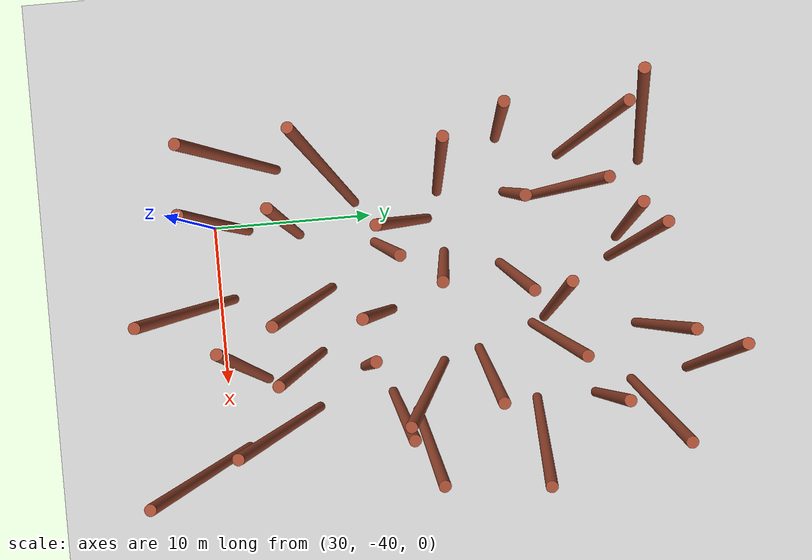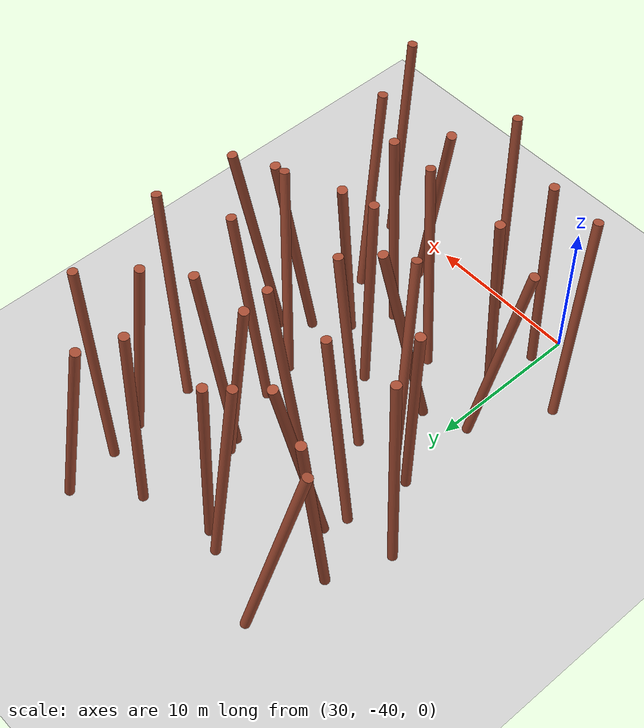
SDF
<sdf version="1.5">
 <world name="default">
  <include><uri>model://sun</uri></include>
  <include><uri>model://ground_plane</uri></include>
  <include><uri>model://asphalt_plane</uri><pose>0 0 -0.000001 0 0 0</pose></include>
  <model name="unit_cylinder_100">
   <pose>26.93196 -36.65088 7.70000 0.12512 0.04221 0.00000</pose>
   <gravity>0 0 0</gravity>
   <link name="link">
    <inertial>
     <mass>100</mass>
     <inertia><ixx>20</ixx><ixy>0</ixy><ixz>0</ixz><iyy>20</iyy><iyz>0</iyz><izz>20</izz></inertia>
    </inertial>
    <collision name="collision">
     <geometry><cylinder><radius>0.300</radius><length>15.000</length></cylinder></geometry>
    </collision>
    <visual name="visual">
     <geometry><cylinder><radius>0.300</radius><length>15.000</length></cylinder></geometry>
     <material>
      <script><name>Gazebo/Bricks</name><uri>file://media/materials/scripts/gazebo.material</uri></script>
     </material>
    </visual>
   </link>
   <static>1</static>
  </model>
  <model name="unit_cylinder_102">
   <pose>28.02639 -31.56326 7.70000 0.09041 -0.14822 0.00000</pose>
   <gravity>0 0 0</gravity>
   <link name="link">
    <inertial>
     <mass>100</mass>
     <inertia><ixx>20</ixx><ixy>0</ixy><ixz>0</ixz><iyy>20</iyy><iyz>0</iyz><izz>20</izz></inertia>
    </inertial>
    <collision name="collision">
     <geometry><cylinder><radius>0.300</radius><length>15.000</length></cylinder></geometry>
    </collision>
    <visual name="visual">
     <geometry><cylinder><radius>0.300</radius><length>15.000</length></cylinder></geometry>
     <material>
      <script><name>Gazebo/Bricks</name><uri>file://media/materials/scripts/gazebo.material</uri></script>
     </material>
    </visual>
    <kinematic>1</kinematic>
   </link>
   <static>0</static>
   <plugin name="dynamic_obstacle_motion_102" filename="libobstaclePathPlugin.so">
    <motion_type>proximity_linear</motion_type>
    <direction>-0.324916563 0.945742685 0.000000000</direction>
    <velocity>0.389677918</velocity>
    <activation_distance>20.000000000</activation_distance>
    <activation_model>iris</activation_model>
    <orientation>false</orientation>
    <marker_enabled>true</marker_enabled>
    <marker_id>102</marker_id>
    <marker_radius>0.300000000</marker_radius>
    <marker_height>15.000000000</marker_height>
    <marker_rate>20.0</marker_rate>
    <marker_topic>/uav_simulator/dynamic_obstacles</marker_topic>
    <marker_frame>map</marker_frame>
   </plugin>
  </model>
  <model name="unit_cylinder_103">
   <pose>28.44000 -25.28094 7.70000 -0.04207 -0.06044 0.00000</pose>
   <gravity>0 0 0</gravity>
   <link name="link">
    <inertial>
     <mass>100</mass>
     <inertia><ixx>20</ixx><ixy>0</ixy><ixz>0</ixz><iyy>20</iyy><iyz>0</iyz><izz>20</izz></inertia>
    </inertial>
    <collision name="collision">
     <geometry><cylinder><radius>0.300</radius><length>15.000</length></cylinder></geometry>
    </collision>
    <visual name="visual">
     <geometry><cylinder><radius>0.300</radius><length>15.000</length></cylinder></geometry>
     <material>
      <script><name>Gazebo/Bricks</name><uri>file://media/materials/scripts/gazebo.material</uri></script>
     </material>
    </visual>
    <kinematic>1</kinematic>
   </link>
   <static>0</static>
   <plugin name="dynamic_obstacle_motion_103" filename="libobstaclePathPlugin.so">
    <motion_type>proximity_linear</motion_type>
    <direction>-0.965056633 0.262041400 0.000000000</direction>
    <velocity>1.583879228</velocity>
    <activation_distance>20.000000000</activation_distance>
    <activation_model>iris</activation_model>
    <orientation>false</orientation>
    <marker_enabled>true</marker_enabled>
    <marker_id>103</marker_id>
    <marker_radius>0.300000000</marker_radius>
    <marker_height>15.000000000</marker_height>
    <marker_rate>20.0</marker_rate>
    <marker_topic>/uav_simulator/dynamic_obstacles</marker_topic>
    <marker_frame>map</marker_frame>
   </plugin>
  </model>
  <model name="unit_cylinder_104">
   <pose>26.20484 -21.76531 7.70000 0.02459 0.05343 0.00000</pose>
   <gravity>0 0 0</gravity>
   <link name="link">
    <inertial>
     <mass>100</mass>
     <inertia><ixx>20</ixx><ixy>0</ixy><ixz>0</ixz><iyy>20</iyy><iyz>0</iyz><izz>20</izz></inertia>
    </inertial>
    <collision name="collision">
     <geometry><cylinder><radius>0.300</radius><length>15.000</length></cylinder></geometry>
    </collision>
    <visual name="visual">
     <geometry><cylinder><radius>0.300</radius><length>15.000</length></cylinder></geometry>
     <material>
      <script><name>Gazebo/Bricks</name><uri>file://media/materials/scripts/gazebo.material</uri></script>
     </material>
    </visual>
    <kinematic>1</kinematic>
   </link>
   <static>0</static>
   <plugin name="dynamic_obstacle_motion_104" filename="libobstaclePathPlugin.so">
    <motion_type>proximity_linear</motion_type>
    <direction>0.863160348 0.504929909 0.000000000</direction>
    <velocity>0.607405265</velocity>
    <activation_distance>20.000000000</activation_distance>
    <activation_model>iris</activation_model>
    <orientation>false</orientation>
    <marker_enabled>true</marker_enabled>
    <marker_id>104</marker_id>
    <marker_radius>0.300000000</marker_radius>
    <marker_height>15.000000000</marker_height>
    <marker_rate>20.0</marker_rate>
    <marker_topic>/uav_simulator/dynamic_obstacles</marker_topic>
    <marker_frame>map</marker_frame>
   </plugin>
  </model>
  <model name="unit_cylinder_105">
   <pose>27.13238 -16.89175 7.70000 -0.11122 -0.01059 0.00000</pose>
   <gravity>0 0 0</gravity>
   <link name="link">
    <inertial>
     <mass>100</mass>
     <inertia><ixx>20</ixx><ixy>0</ixy><ixz>0</ixz><iyy>20</iyy><iyz>0</iyz><izz>20</izz></inertia>
    </inertial>
    <collision name="collision">
     <geometry><cylinder><radius>0.300</radius><length>15.000</length></cylinder></geometry>
    </collision>
    <visual name="visual">
     <geometry><cylinder><radius>0.300</radius><length>15.000</length></cylinder></geometry>
     <material>
      <script><name>Gazebo/Bricks</name><uri>file://media/materials/scripts/gazebo.material</uri></script>
     </material>
    </visual>
    <kinematic>1</kinematic>
   </link>
   <static>0</static>
   <plugin name="dynamic_obstacle_motion_105" filename="libobstaclePathPlugin.so">
    <motion_type>proximity_linear</motion_type>
    <direction>0.502331174 0.864675310 0.000000000</direction>
    <velocity>0.558505945</velocity>
    <activation_distance>20.000000000</activation_distance>
    <activation_model>iris</activation_model>
    <orientation>false</orientation>
    <marker_enabled>true</marker_enabled>
    <marker_id>105</marker_id>
    <marker_radius>0.300000000</marker_radius>
    <marker_height>15.000000000</marker_height>
    <marker_rate>20.0</marker_rate>
    <marker_topic>/uav_simulator/dynamic_obstacles</marker_topic>
    <marker_frame>map</marker_frame>
   </plugin>
  </model>
  <model name="unit_cylinder_106">
   <pose>26.80536 -13.89065 7.70000 0.17180 -0.16900 0.00000</pose>
   <gravity>0 0 0</gravity>
   <link name="link">
    <inertial>
     <mass>100</mass>
     <inertia><ixx>20</ixx><ixy>0</ixy><ixz>0</ixz><iyy>20</iyy><iyz>0</iyz><izz>20</izz></inertia>
    </inertial>
    <collision name="collision">
     <geometry><cylinder><radius>0.300</radius><length>15.000</length></cylinder></geometry>
    </collision>
    <visual name="visual">
     <geometry><cylinder><radius>0.300</radius><length>15.000</length></cylinder></geometry>
     <material>
      <script><name>Gazebo/Bricks</name><uri>file://media/materials/scripts/gazebo.material</uri></script>
     </material>
    </visual>
    <kinematic>1</kinematic>
   </link>
   <static>0</static>
   <plugin name="dynamic_obstacle_motion_106" filename="libobstaclePathPlugin.so">
    <motion_type>proximity_linear</motion_type>
    <direction>-0.667360134 0.744735155 0.000000000</direction>
    <velocity>1.034438366</velocity>
    <activation_distance>20.000000000</activation_distance>
    <activation_model>iris</activation_model>
    <orientation>false</orientation>
    <marker_enabled>true</marker_enabled>
    <marker_id>106</marker_id>
    <marker_radius>0.300000000</marker_radius>
    <marker_height>15.000000000</marker_height>
    <marker_rate>20.0</marker_rate>
    <marker_topic>/uav_simulator/dynamic_obstacles</marker_topic>
    <marker_frame>map</marker_frame>
   </plugin>
  </model>
  <model name="unit_cylinder_120">
   <pose>30.47065 -37.78100 7.70000 -0.00720 0.01713 0.00000</pose>
   <gravity>0 0 0</gravity>
   <link name="link">
    <inertial>
     <mass>100</mass>
     <inertia><ixx>20</ixx><ixy>0</ixy><ixz>0</ixz><iyy>20</iyy><iyz>0</iyz><izz>20</izz></inertia>
    </inertial>
    <collision name="collision">
     <geometry><cylinder><radius>0.300</radius><length>15.000</length></cylinder></geometry>
    </collision>
    <visual name="visual">
     <geometry><cylinder><radius>0.300</radius><length>15.000</length></cylinder></geometry>
     <material>
      <script><name>Gazebo/Bricks</name><uri>file://media/materials/scripts/gazebo.material</uri></script>
     </material>
    </visual>
   </link>
   <static>1</static>
  </model>
  <model name="unit_cylinder_121">
   <pose>30.76302 -34.05270 7.70000 -0.07211 -0.01516 0.00000</pose>
   <gravity>0 0 0</gravity>
   <link name="link">
    <inertial>
     <mass>100</mass>
     <inertia><ixx>20</ixx><ixy>0</ixy><ixz>0</ixz><iyy>20</iyy><iyz>0</iyz><izz>20</izz></inertia>
    </inertial>
    <collision name="collision">
     <geometry><cylinder><radius>0.300</radius><length>15.000</length></cylinder></geometry>
    </collision>
    <visual name="visual">
     <geometry><cylinder><radius>0.300</radius><length>15.000</length></cylinder></geometry>
     <material>
      <script><name>Gazebo/Bricks</name><uri>file://media/materials/scripts/gazebo.material</uri></script>
     </material>
    </visual>
   </link>
   <static>1</static>
  </model>
  <model name="unit_cylinder_122">
   <pose>32.58461 -28.64400 7.70000 -0.15858 0.10804 0.00000</pose>
   <gravity>0 0 0</gravity>
   <link name="link">
    <inertial>
     <mass>100</mass>
     <inertia><ixx>20</ixx><ixy>0</ixy><ixz>0</ixz><iyy>20</iyy><iyz>0</iyz><izz>20</izz></inertia>
    </inertial>
    <collision name="collision">
     <geometry><cylinder><radius>0.300</radius><length>15.000</length></cylinder></geometry>
    </collision>
    <visual name="visual">
     <geometry><cylinder><radius>0.300</radius><length>15.000</length></cylinder></geometry>
     <material>
      <script><name>Gazebo/Bricks</name><uri>file://media/materials/scripts/gazebo.material</uri></script>
     </material>
    </visual>
   </link>
   <static>1</static>
  </model>
  <model name="unit_cylinder_123">
   <pose>31.21159 -27.40756 7.70000 0.14224 0.08819 0.00000</pose>
   <gravity>0 0 0</gravity>
   <link name="link">
    <inertial>
     <mass>100</mass>
     <inertia><ixx>20</ixx><ixy>0</ixy><ixz>0</ixz><iyy>20</iyy><iyz>0</iyz><izz>20</izz></inertia>
    </inertial>
    <collision name="collision">
     <geometry><cylinder><radius>0.300</radius><length>15.000</length></cylinder></geometry>
    </collision>
    <visual name="visual">
     <geometry><cylinder><radius>0.300</radius><length>15.000</length></cylinder></geometry>
     <material>
      <script><name>Gazebo/Bricks</name><uri>file://media/materials/scripts/gazebo.material</uri></script>
     </material>
    </visual>
    <kinematic>1</kinematic>
   </link>
   <static>0</static>
   <plugin name="dynamic_obstacle_motion_123" filename="libobstaclePathPlugin.so">
    <motion_type>proximity_linear</motion_type>
    <direction>-0.192374243 0.981321635 0.000000000</direction>
    <velocity>0.296649496</velocity>
    <activation_distance>20.000000000</activation_distance>
    <activation_model>iris</activation_model>
    <orientation>false</orientation>
    <marker_enabled>true</marker_enabled>
    <marker_id>123</marker_id>
    <marker_radius>0.300000000</marker_radius>
    <marker_height>15.000000000</marker_height>
    <marker_rate>20.0</marker_rate>
    <marker_topic>/uav_simulator/dynamic_obstacles</marker_topic>
    <marker_frame>map</marker_frame>
   </plugin>
  </model>
  <model name="unit_cylinder_124">
   <pose>30.18014 -21.33307 7.70000 -0.00153 0.12000 0.00000</pose>
   <gravity>0 0 0</gravity>
   <link name="link">
    <inertial>
     <mass>100</mass>
     <inertia><ixx>20</ixx><ixy>0</ixy><ixz>0</ixz><iyy>20</iyy><iyz>0</iyz><izz>20</izz></inertia>
    </inertial>
    <collision name="collision">
     <geometry><cylinder><radius>0.300</radius><length>15.000</length></cylinder></geometry>
    </collision>
    <visual name="visual">
     <geometry><cylinder><radius>0.300</radius><length>15.000</length></cylinder></geometry>
     <material>
      <script><name>Gazebo/Bricks</name><uri>file://media/materials/scripts/gazebo.material</uri></script>
     </material>
    </visual>
    <kinematic>1</kinematic>
   </link>
   <static>0</static>
   <plugin name="dynamic_obstacle_motion_124" filename="libobstaclePathPlugin.so">
    <motion_type>proximity_linear</motion_type>
    <direction>-0.999165216 -0.040851815 0.000000000</direction>
    <velocity>1.587818739</velocity>
    <activation_distance>20.000000000</activation_distance>
    <activation_model>iris</activation_model>
    <orientation>false</orientation>
    <marker_enabled>true</marker_enabled>
    <marker_id>124</marker_id>
    <marker_radius>0.300000000</marker_radius>
    <marker_height>15.000000000</marker_height>
    <marker_rate>20.0</marker_rate>
    <marker_topic>/uav_simulator/dynamic_obstacles</marker_topic>
    <marker_frame>map</marker_frame>
   </plugin>
  </model>
  <model name="unit_cylinder_125">
   <pose>30.12170 -18.58486 7.70000 -0.17320 0.05793 0.00000</pose>
   <gravity>0 0 0</gravity>
   <link name="link">
    <inertial>
     <mass>100</mass>
     <inertia><ixx>20</ixx><ixy>0</ixy><ixz>0</ixz><iyy>20</iyy><iyz>0</iyz><izz>20</izz></inertia>
    </inertial>
    <collision name="collision">
     <geometry><cylinder><radius>0.300</radius><length>15.000</length></cylinder></geometry>
    </collision>
    <visual name="visual">
     <geometry><cylinder><radius>0.300</radius><length>15.000</length></cylinder></geometry>
     <material>
      <script><name>Gazebo/Bricks</name><uri>file://media/materials/scripts/gazebo.material</uri></script>
     </material>
    </visual>
    <kinematic>1</kinematic>
   </link>
   <static>0</static>
   <plugin name="dynamic_obstacle_motion_125" filename="libobstaclePathPlugin.so">
    <motion_type>proximity_linear</motion_type>
    <direction>0.866249400 -0.499611826 0.000000000</direction>
    <velocity>0.473830474</velocity>
    <activation_distance>20.000000000</activation_distance>
    <activation_model>iris</activation_model>
    <orientation>false</orientation>
    <marker_enabled>true</marker_enabled>
    <marker_id>125</marker_id>
    <marker_radius>0.300000000</marker_radius>
    <marker_height>15.000000000</marker_height>
    <marker_rate>20.0</marker_rate>
    <marker_topic>/uav_simulator/dynamic_obstacles</marker_topic>
    <marker_frame>map</marker_frame>
   </plugin>
  </model>
  <model name="unit_cylinder_126">
   <pose>32.31960 -15.10361 7.70000 0.09334 -0.06051 0.00000</pose>
   <gravity>0 0 0</gravity>
   <link name="link">
    <inertial>
     <mass>100</mass>
     <inertia><ixx>20</ixx><ixy>0</ixy><ixz>0</ixz><iyy>20</iyy><iyz>0</iyz><izz>20</izz></inertia>
    </inertial>
    <collision name="collision">
     <geometry><cylinder><radius>0.300</radius><length>15.000</length></cylinder></geometry>
    </collision>
    <visual name="visual">
     <geometry><cylinder><radius>0.300</radius><length>15.000</length></cylinder></geometry>
     <material>
      <script><name>Gazebo/Bricks</name><uri>file://media/materials/scripts/gazebo.material</uri></script>
     </material>
    </visual>
    <kinematic>1</kinematic>
   </link>
   <static>0</static>
   <plugin name="dynamic_obstacle_motion_126" filename="libobstaclePathPlugin.so">
    <motion_type>proximity_linear</motion_type>
    <direction>0.596321644 0.802745599 0.000000000</direction>
    <velocity>0.120959175</velocity>
    <activation_distance>20.000000000</activation_distance>
    <activation_model>iris</activation_model>
    <orientation>false</orientation>
    <marker_enabled>true</marker_enabled>
    <marker_id>126</marker_id>
    <marker_radius>0.300000000</marker_radius>
    <marker_height>15.000000000</marker_height>
    <marker_rate>20.0</marker_rate>
    <marker_topic>/uav_simulator/dynamic_obstacles</marker_topic>
    <marker_frame>map</marker_frame>
   </plugin>
  </model>
  <model name="unit_cylinder_140">
   <pose>35.17888 -39.65870 7.70000 0.07435 0.07308 0.00000</pose>
   <gravity>0 0 0</gravity>
   <link name="link">
    <inertial>
     <mass>100</mass>
     <inertia><ixx>20</ixx><ixy>0</ixy><ixz>0</ixz><iyy>20</iyy><iyz>0</iyz><izz>20</izz></inertia>
    </inertial>
    <collision name="collision">
     <geometry><cylinder><radius>0.300</radius><length>15.000</length></cylinder></geometry>
    </collision>
    <visual name="visual">
     <geometry><cylinder><radius>0.300</radius><length>15.000</length></cylinder></geometry>
     <material>
      <script><name>Gazebo/Bricks</name><uri>file://media/materials/scripts/gazebo.material</uri></script>
     </material>
    </visual>
    <kinematic>1</kinematic>
   </link>
   <static>0</static>
   <plugin name="dynamic_obstacle_motion_140" filename="libobstaclePathPlugin.so">
    <motion_type>proximity_linear</motion_type>
    <direction>0.994637295 0.103424613 0.000000000</direction>
    <velocity>1.117797172</velocity>
    <activation_distance>20.000000000</activation_distance>
    <activation_model>iris</activation_model>
    <orientation>false</orientation>
    <marker_enabled>true</marker_enabled>
    <marker_id>140</marker_id>
    <marker_radius>0.300000000</marker_radius>
    <marker_height>15.000000000</marker_height>
    <marker_rate>20.0</marker_rate>
    <marker_topic>/uav_simulator/dynamic_obstacles</marker_topic>
    <marker_frame>map</marker_frame>
   </plugin>
  </model>
  <model name="unit_cylinder_141">
   <pose>35.31934 -33.27582 7.70000 0.06363 0.11953 0.00000</pose>
   <gravity>0 0 0</gravity>
   <link name="link">
    <inertial>
     <mass>100</mass>
     <inertia><ixx>20</ixx><ixy>0</ixy><ixz>0</ixz><iyy>20</iyy><iyz>0</iyz><izz>20</izz></inertia>
    </inertial>
    <collision name="collision">
     <geometry><cylinder><radius>0.300</radius><length>15.000</length></cylinder></geometry>
    </collision>
    <visual name="visual">
     <geometry><cylinder><radius>0.300</radius><length>15.000</length></cylinder></geometry>
     <material>
      <script><name>Gazebo/Bricks</name><uri>file://media/materials/scripts/gazebo.material</uri></script>
     </material>
    </visual>
    <kinematic>1</kinematic>
   </link>
   <static>0</static>
   <plugin name="dynamic_obstacle_motion_141" filename="libobstaclePathPlugin.so">
    <motion_type>proximity_linear</motion_type>
    <direction>-0.594307068 -0.804238217 0.000000000</direction>
    <velocity>0.858811427</velocity>
    <activation_distance>20.000000000</activation_distance>
    <activation_model>iris</activation_model>
    <orientation>false</orientation>
    <marker_enabled>true</marker_enabled>
    <marker_id>141</marker_id>
    <marker_radius>0.300000000</marker_radius>
    <marker_height>15.000000000</marker_height>
    <marker_rate>20.0</marker_rate>
    <marker_topic>/uav_simulator/dynamic_obstacles</marker_topic>
    <marker_frame>map</marker_frame>
   </plugin>
  </model>
  <model name="unit_cylinder_142">
   <pose>36.18419 -29.26305 7.70000 0.02699 0.00560 0.00000</pose>
   <gravity>0 0 0</gravity>
   <link name="link">
    <inertial>
     <mass>100</mass>
     <inertia><ixx>20</ixx><ixy>0</ixy><ixz>0</ixz><iyy>20</iyy><iyz>0</iyz><izz>20</izz></inertia>
    </inertial>
    <collision name="collision">
     <geometry><cylinder><radius>0.300</radius><length>15.000</length></cylinder></geometry>
    </collision>
    <visual name="visual">
     <geometry><cylinder><radius>0.300</radius><length>15.000</length></cylinder></geometry>
     <material>
      <script><name>Gazebo/Bricks</name><uri>file://media/materials/scripts/gazebo.material</uri></script>
     </material>
    </visual>
    <kinematic>1</kinematic>
   </link>
   <static>0</static>
   <plugin name="dynamic_obstacle_motion_142" filename="libobstaclePathPlugin.so">
    <motion_type>proximity_linear</motion_type>
    <direction>-0.643269541 0.765639796 0.000000000</direction>
    <velocity>1.975636533</velocity>
    <activation_distance>20.000000000</activation_distance>
    <activation_model>iris</activation_model>
    <orientation>false</orientation>
    <marker_enabled>true</marker_enabled>
    <marker_id>142</marker_id>
    <marker_radius>0.300000000</marker_radius>
    <marker_height>15.000000000</marker_height>
    <marker_rate>20.0</marker_rate>
    <marker_topic>/uav_simulator/dynamic_obstacles</marker_topic>
    <marker_frame>map</marker_frame>
   </plugin>
  </model>
  <model name="unit_cylinder_143">
   <pose>33.79461 -25.50345 7.70000 0.00590 0.13578 0.00000</pose>
   <gravity>0 0 0</gravity>
   <link name="link">
    <inertial>
     <mass>100</mass>
     <inertia><ixx>20</ixx><ixy>0</ixy><ixz>0</ixz><iyy>20</iyy><iyz>0</iyz><izz>20</izz></inertia>
    </inertial>
    <collision name="collision">
     <geometry><cylinder><radius>0.300</radius><length>15.000</length></cylinder></geometry>
    </collision>
    <visual name="visual">
     <geometry><cylinder><radius>0.300</radius><length>15.000</length></cylinder></geometry>
     <material>
      <script><name>Gazebo/Bricks</name><uri>file://media/materials/scripts/gazebo.material</uri></script>
     </material>
    </visual>
    <kinematic>1</kinematic>
   </link>
   <static>0</static>
   <plugin name="dynamic_obstacle_motion_143" filename="libobstaclePathPlugin.so">
    <motion_type>proximity_linear</motion_type>
    <direction>-0.724694859 -0.689069924 0.000000000</direction>
    <velocity>0.809019715</velocity>
    <activation_distance>20.000000000</activation_distance>
    <activation_model>iris</activation_model>
    <orientation>false</orientation>
    <marker_enabled>true</marker_enabled>
    <marker_id>143</marker_id>
    <marker_radius>0.300000000</marker_radius>
    <marker_height>15.000000000</marker_height>
    <marker_rate>20.0</marker_rate>
    <marker_topic>/uav_simulator/dynamic_obstacles</marker_topic>
    <marker_frame>map</marker_frame>
   </plugin>
  </model>
  <model name="unit_cylinder_144">
   <pose>34.68214 -21.62145 7.70000 -0.04651 0.11935 0.00000</pose>
   <gravity>0 0 0</gravity>
   <link name="link">
    <inertial>
     <mass>100</mass>
     <inertia><ixx>20</ixx><ixy>0</ixy><ixz>0</ixz><iyy>20</iyy><iyz>0</iyz><izz>20</izz></inertia>
    </inertial>
    <collision name="collision">
     <geometry><cylinder><radius>0.300</radius><length>15.000</length></cylinder></geometry>
    </collision>
    <visual name="visual">
     <geometry><cylinder><radius>0.300</radius><length>15.000</length></cylinder></geometry>
     <material>
      <script><name>Gazebo/Bricks</name><uri>file://media/materials/scripts/gazebo.material</uri></script>
     </material>
    </visual>
    <kinematic>1</kinematic>
   </link>
   <static>0</static>
   <plugin name="dynamic_obstacle_motion_144" filename="libobstaclePathPlugin.so">
    <motion_type>proximity_linear</motion_type>
    <direction>0.838384275 -0.545079634 -0.000000000</direction>
    <velocity>0.416276786</velocity>
    <activation_distance>20.000000000</activation_distance>
    <activation_model>iris</activation_model>
    <orientation>false</orientation>
    <marker_enabled>true</marker_enabled>
    <marker_id>144</marker_id>
    <marker_radius>0.300000000</marker_radius>
    <marker_height>15.000000000</marker_height>
    <marker_rate>20.0</marker_rate>
    <marker_topic>/uav_simulator/dynamic_obstacles</marker_topic>
    <marker_frame>map</marker_frame>
   </plugin>
  </model>
  <model name="unit_cylinder_145">
   <pose>36.39386 -19.44936 7.70000 0.00171 -0.14474 0.00000</pose>
   <gravity>0 0 0</gravity>
   <link name="link">
    <inertial>
     <mass>100</mass>
     <inertia><ixx>20</ixx><ixy>0</ixy><ixz>0</ixz><iyy>20</iyy><iyz>0</iyz><izz>20</izz></inertia>
    </inertial>
    <collision name="collision">
     <geometry><cylinder><radius>0.300</radius><length>15.000</length></cylinder></geometry>
    </collision>
    <visual name="visual">
     <geometry><cylinder><radius>0.300</radius><length>15.000</length></cylinder></geometry>
     <material>
      <script><name>Gazebo/Bricks</name><uri>file://media/materials/scripts/gazebo.material</uri></script>
     </material>
    </visual>
    <kinematic>1</kinematic>
   </link>
   <static>0</static>
   <plugin name="dynamic_obstacle_motion_145" filename="libobstaclePathPlugin.so">
    <motion_type>proximity_linear</motion_type>
    <direction>0.024382242 -0.999702709 0.000000000</direction>
    <velocity>1.618453366</velocity>
    <activation_distance>20.000000000</activation_distance>
    <activation_model>iris</activation_model>
    <orientation>false</orientation>
    <marker_enabled>true</marker_enabled>
    <marker_id>145</marker_id>
    <marker_radius>0.300000000</marker_radius>
    <marker_height>15.000000000</marker_height>
    <marker_rate>20.0</marker_rate>
    <marker_topic>/uav_simulator/dynamic_obstacles</marker_topic>
    <marker_frame>map</marker_frame>
   </plugin>
  </model>
  <model name="unit_cylinder_146">
   <pose>33.44643 -14.86222 7.70000 -0.01781 -0.07289 0.00000</pose>
   <gravity>0 0 0</gravity>
   <link name="link">
    <inertial>
     <mass>100</mass>
     <inertia><ixx>20</ixx><ixy>0</ixy><ixz>0</ixz><iyy>20</iyy><iyz>0</iyz><izz>20</izz></inertia>
    </inertial>
    <collision name="collision">
     <geometry><cylinder><radius>0.300</radius><length>15.000</length></cylinder></geometry>
    </collision>
    <visual name="visual">
     <geometry><cylinder><radius>0.300</radius><length>15.000</length></cylinder></geometry>
     <material>
      <script><name>Gazebo/Bricks</name><uri>file://media/materials/scripts/gazebo.material</uri></script>
     </material>
    </visual>
   </link>
   <static>1</static>
  </model>
  <model name="unit_cylinder_160">
   <pose>38.59462 -36.90591 7.70000 -0.05592 -0.17446 0.00000</pose>
   <gravity>0 0 0</gravity>
   <link name="link">
    <inertial>
     <mass>100</mass>
     <inertia><ixx>20</ixx><ixy>0</ixy><ixz>0</ixz><iyy>20</iyy><iyz>0</iyz><izz>20</izz></inertia>
    </inertial>
    <collision name="collision">
     <geometry><cylinder><radius>0.300</radius><length>15.000</length></cylinder></geometry>
    </collision>
    <visual name="visual">
     <geometry><cylinder><radius>0.300</radius><length>15.000</length></cylinder></geometry>
     <material>
      <script><name>Gazebo/Bricks</name><uri>file://media/materials/scripts/gazebo.material</uri></script>
     </material>
    </visual>
   </link>
   <static>1</static>
  </model>
  <model name="unit_cylinder_161">
   <pose>38.76123 -33.71106 7.70000 -0.00610 0.03770 0.00000</pose>
   <gravity>0 0 0</gravity>
   <link name="link">
    <inertial>
     <mass>100</mass>
     <inertia><ixx>20</ixx><ixy>0</ixy><ixz>0</ixz><iyy>20</iyy><iyz>0</iyz><izz>20</izz></inertia>
    </inertial>
    <collision name="collision">
     <geometry><cylinder><radius>0.300</radius><length>15.000</length></cylinder></geometry>
    </collision>
    <visual name="visual">
     <geometry><cylinder><radius>0.300</radius><length>15.000</length></cylinder></geometry>
     <material>
      <script><name>Gazebo/Bricks</name><uri>file://media/materials/scripts/gazebo.material</uri></script>
     </material>
    </visual>
    <kinematic>1</kinematic>
   </link>
   <static>0</static>
   <plugin name="dynamic_obstacle_motion_161" filename="libobstaclePathPlugin.so">
    <motion_type>proximity_linear</motion_type>
    <direction>0.733377380 -0.679821755 0.000000000</direction>
    <velocity>1.245382115</velocity>
    <activation_distance>20.000000000</activation_distance>
    <activation_model>iris</activation_model>
    <orientation>false</orientation>
    <marker_enabled>true</marker_enabled>
    <marker_id>161</marker_id>
    <marker_radius>0.300000000</marker_radius>
    <marker_height>15.000000000</marker_height>
    <marker_rate>20.0</marker_rate>
    <marker_topic>/uav_simulator/dynamic_obstacles</marker_topic>
    <marker_frame>map</marker_frame>
   </plugin>
  </model>
  <model name="unit_cylinder_162">
   <pose>38.96209 -30.07960 7.70000 -0.14207 -0.09003 0.00000</pose>
   <gravity>0 0 0</gravity>
   <link name="link">
    <inertial>
     <mass>100</mass>
     <inertia><ixx>20</ixx><ixy>0</ixy><ixz>0</ixz><iyy>20</iyy><iyz>0</iyz><izz>20</izz></inertia>
    </inertial>
    <collision name="collision">
     <geometry><cylinder><radius>0.300</radius><length>15.000</length></cylinder></geometry>
    </collision>
    <visual name="visual">
     <geometry><cylinder><radius>0.300</radius><length>15.000</length></cylinder></geometry>
     <material>
      <script><name>Gazebo/Bricks</name><uri>file://media/materials/scripts/gazebo.material</uri></script>
     </material>
    </visual>
    <kinematic>1</kinematic>
   </link>
   <static>0</static>
   <plugin name="dynamic_obstacle_motion_162" filename="libobstaclePathPlugin.so">
    <motion_type>proximity_linear</motion_type>
    <direction>-0.949838265 -0.312741540 0.000000000</direction>
    <velocity>0.618086866</velocity>
    <activation_distance>20.000000000</activation_distance>
    <activation_model>iris</activation_model>
    <orientation>false</orientation>
    <marker_enabled>true</marker_enabled>
    <marker_id>162</marker_id>
    <marker_radius>0.300000000</marker_radius>
    <marker_height>15.000000000</marker_height>
    <marker_rate>20.0</marker_rate>
    <marker_topic>/uav_simulator/dynamic_obstacles</marker_topic>
    <marker_frame>map</marker_frame>
   </plugin>
  </model>
  <model name="unit_cylinder_163">
   <pose>40.61997 -26.82909 7.70000 0.10611 0.11878 0.00000</pose>
   <gravity>0 0 0</gravity>
   <link name="link">
    <inertial>
     <mass>100</mass>
     <inertia><ixx>20</ixx><ixy>0</ixy><ixz>0</ixz><iyy>20</iyy><iyz>0</iyz><izz>20</izz></inertia>
    </inertial>
    <collision name="collision">
     <geometry><cylinder><radius>0.300</radius><length>15.000</length></cylinder></geometry>
    </collision>
    <visual name="visual">
     <geometry><cylinder><radius>0.300</radius><length>15.000</length></cylinder></geometry>
     <material>
      <script><name>Gazebo/Bricks</name><uri>file://media/materials/scripts/gazebo.material</uri></script>
     </material>
    </visual>
    <kinematic>1</kinematic>
   </link>
   <static>0</static>
   <plugin name="dynamic_obstacle_motion_163" filename="libobstaclePathPlugin.so">
    <motion_type>proximity_linear</motion_type>
    <direction>-0.901431296 0.432922186 0.000000000</direction>
    <velocity>0.834649779</velocity>
    <activation_distance>20.000000000</activation_distance>
    <activation_model>iris</activation_model>
    <orientation>false</orientation>
    <marker_enabled>true</marker_enabled>
    <marker_id>163</marker_id>
    <marker_radius>0.300000000</marker_radius>
    <marker_height>15.000000000</marker_height>
    <marker_rate>20.0</marker_rate>
    <marker_topic>/uav_simulator/dynamic_obstacles</marker_topic>
    <marker_frame>map</marker_frame>
   </plugin>
  </model>
  <model name="unit_cylinder_164">
   <pose>39.93735 -23.45296 7.70000 -0.03919 0.10968 0.00000</pose>
   <gravity>0 0 0</gravity>
   <link name="link">
    <inertial>
     <mass>100</mass>
     <inertia><ixx>20</ixx><ixy>0</ixy><ixz>0</ixz><iyy>20</iyy><iyz>0</iyz><izz>20</izz></inertia>
    </inertial>
    <collision name="collision">
     <geometry><cylinder><radius>0.300</radius><length>15.000</length></cylinder></geometry>
    </collision>
    <visual name="visual">
     <geometry><cylinder><radius>0.300</radius><length>15.000</length></cylinder></geometry>
     <material>
      <script><name>Gazebo/Bricks</name><uri>file://media/materials/scripts/gazebo.material</uri></script>
     </material>
    </visual>
   </link>
   <static>1</static>
  </model>
  <model name="unit_cylinder_165">
   <pose>38.35012 -19.63917 7.70000 -0.07779 0.07195 0.00000</pose>
   <gravity>0 0 0</gravity>
   <link name="link">
    <inertial>
     <mass>100</mass>
     <inertia><ixx>20</ixx><ixy>0</ixy><ixz>0</ixz><iyy>20</iyy><iyz>0</iyz><izz>20</izz></inertia>
    </inertial>
    <collision name="collision">
     <geometry><cylinder><radius>0.300</radius><length>15.000</length></cylinder></geometry>
    </collision>
    <visual name="visual">
     <geometry><cylinder><radius>0.300</radius><length>15.000</length></cylinder></geometry>
     <material>
      <script><name>Gazebo/Bricks</name><uri>file://media/materials/scripts/gazebo.material</uri></script>
     </material>
    </visual>
   </link>
   <static>1</static>
  </model>
  <model name="unit_cylinder_166">
   <pose>38.21745 -13.72810 7.70000 0.01587 -0.02091 0.00000</pose>
   <gravity>0 0 0</gravity>
   <link name="link">
    <inertial>
     <mass>100</mass>
     <inertia><ixx>20</ixx><ixy>0</ixy><ixz>0</ixz><iyy>20</iyy><iyz>0</iyz><izz>20</izz></inertia>
    </inertial>
    <collision name="collision">
     <geometry><cylinder><radius>0.300</radius><length>15.000</length></cylinder></geometry>
    </collision>
    <visual name="visual">
     <geometry><cylinder><radius>0.300</radius><length>15.000</length></cylinder></geometry>
     <material>
      <script><name>Gazebo/Bricks</name><uri>file://media/materials/scripts/gazebo.material</uri></script>
     </material>
    </visual>
    <kinematic>1</kinematic>
   </link>
   <static>0</static>
   <plugin name="dynamic_obstacle_motion_166" filename="libobstaclePathPlugin.so">
    <motion_type>proximity_linear</motion_type>
    <direction>-0.804626747 -0.593780934 0.000000000</direction>
    <velocity>0.160119266</velocity>
    <activation_distance>20.000000000</activation_distance>
    <activation_model>iris</activation_model>
    <orientation>false</orientation>
    <marker_enabled>true</marker_enabled>
    <marker_id>166</marker_id>
    <marker_radius>0.300000000</marker_radius>
    <marker_height>15.000000000</marker_height>
    <marker_rate>20.0</marker_rate>
    <marker_topic>/uav_simulator/dynamic_obstacles</marker_topic>
    <marker_frame>map</marker_frame>
   </plugin>
  </model>
  <model name="unit_cylinder_167">
   <pose>40.23461 -11.05023 7.70000 0.05461 -0.16986 0.00000</pose>
   <gravity>0 0 0</gravity>
   <link name="link">
    <inertial>
     <mass>100</mass>
     <inertia><ixx>20</ixx><ixy>0</ixy><ixz>0</ixz><iyy>20</iyy><iyz>0</iyz><izz>20</izz></inertia>
    </inertial>
    <collision name="collision">
     <geometry><cylinder><radius>0.300</radius><length>15.000</length></cylinder></geometry>
    </collision>
    <visual name="visual">
     <geometry><cylinder><radius>0.300</radius><length>15.000</length></cylinder></geometry>
     <material>
      <script><name>Gazebo/Bricks</name><uri>file://media/materials/scripts/gazebo.material</uri></script>
     </material>
    </visual>
    <kinematic>1</kinematic>
   </link>
   <static>0</static>
   <plugin name="dynamic_obstacle_motion_167" filename="libobstaclePathPlugin.so">
    <motion_type>proximity_linear</motion_type>
    <direction>-0.648477371 0.761233932 0.000000000</direction>
    <velocity>1.975232461</velocity>
    <activation_distance>20.000000000</activation_distance>
    <activation_model>iris</activation_model>
    <orientation>false</orientation>
    <marker_enabled>true</marker_enabled>
    <marker_id>167</marker_id>
    <marker_radius>0.300000000</marker_radius>
    <marker_height>15.000000000</marker_height>
    <marker_rate>20.0</marker_rate>
    <marker_topic>/uav_simulator/dynamic_obstacles</marker_topic>
    <marker_frame>map</marker_frame>
   </plugin>
  </model>
  <model name="unit_cylinder_180">
   <pose>44.22638 -39.56190 7.70000 0.08452 0.01092 0.00000</pose>
   <gravity>0 0 0</gravity>
   <link name="link">
    <inertial>
     <mass>100</mass>
     <inertia><ixx>20</ixx><ixy>0</ixy><ixz>0</ixz><iyy>20</iyy><iyz>0</iyz><izz>20</izz></inertia>
    </inertial>
    <collision name="collision">
     <geometry><cylinder><radius>0.300</radius><length>15.000</length></cylinder></geometry>
    </collision>
    <visual name="visual">
     <geometry><cylinder><radius>0.300</radius><length>15.000</length></cylinder></geometry>
     <material>
      <script><name>Gazebo/Bricks</name><uri>file://media/materials/scripts/gazebo.material</uri></script>
     </material>
    </visual>
    <kinematic>1</kinematic>
   </link>
   <static>0</static>
   <plugin name="dynamic_obstacle_motion_180" filename="libobstaclePathPlugin.so">
    <motion_type>proximity_linear</motion_type>
    <direction>0.758026279 0.652224011 0.000000000</direction>
    <velocity>0.314049112</velocity>
    <activation_distance>20.000000000</activation_distance>
    <activation_model>iris</activation_model>
    <orientation>false</orientation>
    <marker_enabled>true</marker_enabled>
    <marker_id>180</marker_id>
    <marker_radius>0.300000000</marker_radius>
    <marker_height>15.000000000</marker_height>
    <marker_rate>20.0</marker_rate>
    <marker_topic>/uav_simulator/dynamic_obstacles</marker_topic>
    <marker_frame>map</marker_frame>
   </plugin>
  </model>
  <model name="unit_cylinder_181">
   <pose>42.14030 -35.04031 7.70000 0.11159 0.02256 0.00000</pose>
   <gravity>0 0 0</gravity>
   <link name="link">
    <inertial>
     <mass>100</mass>
     <inertia><ixx>20</ixx><ixy>0</ixy><ixz>0</ixz><iyy>20</iyy><iyz>0</iyz><izz>20</izz></inertia>
    </inertial>
    <collision name="collision">
     <geometry><cylinder><radius>0.300</radius><length>15.000</length></cylinder></geometry>
    </collision>
    <visual name="visual">
     <geometry><cylinder><radius>0.300</radius><length>15.000</length></cylinder></geometry>
     <material>
      <script><name>Gazebo/Bricks</name><uri>file://media/materials/scripts/gazebo.material</uri></script>
     </material>
    </visual>
    <kinematic>1</kinematic>
   </link>
   <static>0</static>
   <plugin name="dynamic_obstacle_motion_181" filename="libobstaclePathPlugin.so">
    <motion_type>proximity_linear</motion_type>
    <direction>-0.144757139 -0.989467216 0.000000000</direction>
    <velocity>1.756610065</velocity>
    <activation_distance>20.000000000</activation_distance>
    <activation_model>iris</activation_model>
    <orientation>false</orientation>
    <marker_enabled>true</marker_enabled>
    <marker_id>181</marker_id>
    <marker_radius>0.300000000</marker_radius>
    <marker_height>15.000000000</marker_height>
    <marker_rate>20.0</marker_rate>
    <marker_topic>/uav_simulator/dynamic_obstacles</marker_topic>
    <marker_frame>map</marker_frame>
   </plugin>
  </model>
  <model name="unit_cylinder_182">
   <pose>41.78024 -28.48692 7.70000 -0.13168 0.04953 0.00000</pose>
   <gravity>0 0 0</gravity>
   <link name="link">
    <inertial>
     <mass>100</mass>
     <inertia><ixx>20</ixx><ixy>0</ixy><ixz>0</ixz><iyy>20</iyy><iyz>0</iyz><izz>20</izz></inertia>
    </inertial>
    <collision name="collision">
     <geometry><cylinder><radius>0.300</radius><length>15.000</length></cylinder></geometry>
    </collision>
    <visual name="visual">
     <geometry><cylinder><radius>0.300</radius><length>15.000</length></cylinder></geometry>
     <material>
      <script><name>Gazebo/Bricks</name><uri>file://media/materials/scripts/gazebo.material</uri></script>
     </material>
    </visual>
    <kinematic>1</kinematic>
   </link>
   <static>0</static>
   <plugin name="dynamic_obstacle_motion_182" filename="libobstaclePathPlugin.so">
    <motion_type>proximity_linear</motion_type>
    <direction>0.566086959 -0.824345531 0.000000000</direction>
    <velocity>1.811180373</velocity>
    <activation_distance>20.000000000</activation_distance>
    <activation_model>iris</activation_model>
    <orientation>false</orientation>
    <marker_enabled>true</marker_enabled>
    <marker_id>182</marker_id>
    <marker_radius>0.300000000</marker_radius>
    <marker_height>15.000000000</marker_height>
    <marker_rate>20.0</marker_rate>
    <marker_topic>/uav_simulator/dynamic_obstacles</marker_topic>
    <marker_frame>map</marker_frame>
   </plugin>
  </model>
  <model name="unit_cylinder_183">
   <pose>43.57821 -27.14726 7.70000 -0.11424 0.11298 0.00000</pose>
   <gravity>0 0 0</gravity>
   <link name="link">
    <inertial>
     <mass>100</mass>
     <inertia><ixx>20</ixx><ixy>0</ixy><ixz>0</ixz><iyy>20</iyy><iyz>0</iyz><izz>20</izz></inertia>
    </inertial>
    <collision name="collision">
     <geometry><cylinder><radius>0.300</radius><length>15.000</length></cylinder></geometry>
    </collision>
    <visual name="visual">
     <geometry><cylinder><radius>0.300</radius><length>15.000</length></cylinder></geometry>
     <material>
      <script><name>Gazebo/Bricks</name><uri>file://media/materials/scripts/gazebo.material</uri></script>
     </material>
    </visual>
    <kinematic>1</kinematic>
   </link>
   <static>0</static>
   <plugin name="dynamic_obstacle_motion_183" filename="libobstaclePathPlugin.so">
    <motion_type>proximity_linear</motion_type>
    <direction>0.093581864 -0.995611588 0.000000000</direction>
    <velocity>0.385869261</velocity>
    <activation_distance>20.000000000</activation_distance>
    <activation_model>iris</activation_model>
    <orientation>false</orientation>
    <marker_enabled>true</marker_enabled>
    <marker_id>183</marker_id>
    <marker_radius>0.300000000</marker_radius>
    <marker_height>15.000000000</marker_height>
    <marker_rate>20.0</marker_rate>
    <marker_topic>/uav_simulator/dynamic_obstacles</marker_topic>
    <marker_frame>map</marker_frame>
   </plugin>
  </model>
  <model name="unit_cylinder_184">
   <pose>43.72970 -20.80302 7.70000 0.06320 0.15352 0.00000</pose>
   <gravity>0 0 0</gravity>
   <link name="link">
    <inertial>
     <mass>100</mass>
     <inertia><ixx>20</ixx><ixy>0</ixy><ixz>0</ixz><iyy>20</iyy><iyz>0</iyz><izz>20</izz></inertia>
    </inertial>
    <collision name="collision">
     <geometry><cylinder><radius>0.300</radius><length>15.000</length></cylinder></geometry>
    </collision>
    <visual name="visual">
     <geometry><cylinder><radius>0.300</radius><length>15.000</length></cylinder></geometry>
     <material>
      <script><name>Gazebo/Bricks</name><uri>file://media/materials/scripts/gazebo.material</uri></script>
     </material>
    </visual>
   </link>
   <static>1</static>
  </model>
  <model name="unit_cylinder_185">
   <pose>41.86798 -16.90473 7.70000 0.04506 -0.09594 0.00000</pose>
   <gravity>0 0 0</gravity>
   <link name="link">
    <inertial>
     <mass>100</mass>
     <inertia><ixx>20</ixx><ixy>0</ixy><ixz>0</ixz><iyy>20</iyy><iyz>0</iyz><izz>20</izz></inertia>
    </inertial>
    <collision name="collision">
     <geometry><cylinder><radius>0.300</radius><length>15.000</length></cylinder></geometry>
    </collision>
    <visual name="visual">
     <geometry><cylinder><radius>0.300</radius><length>15.000</length></cylinder></geometry>
     <material>
      <script><name>Gazebo/Bricks</name><uri>file://media/materials/scripts/gazebo.material</uri></script>
     </material>
    </visual>
    <kinematic>1</kinematic>
   </link>
   <static>0</static>
   <plugin name="dynamic_obstacle_motion_185" filename="libobstaclePathPlugin.so">
    <motion_type>proximity_linear</motion_type>
    <direction>-0.325007252 0.945711524 0.000000000</direction>
    <velocity>0.393170568</velocity>
    <activation_distance>20.000000000</activation_distance>
    <activation_model>iris</activation_model>
    <orientation>false</orientation>
    <marker_enabled>true</marker_enabled>
    <marker_id>185</marker_id>
    <marker_radius>0.300000000</marker_radius>
    <marker_height>15.000000000</marker_height>
    <marker_rate>20.0</marker_rate>
    <marker_topic>/uav_simulator/dynamic_obstacles</marker_topic>
    <marker_frame>map</marker_frame>
   </plugin>
  </model>
  <model name="unit_cylinder_186">
   <pose>42.64489 -14.36960 7.70000 0.01994 0.09487 0.00000</pose>
   <gravity>0 0 0</gravity>
   <link name="link">
    <inertial>
     <mass>100</mass>
     <inertia><ixx>20</ixx><ixy>0</ixy><ixz>0</ixz><iyy>20</iyy><iyz>0</iyz><izz>20</izz></inertia>
    </inertial>
    <collision name="collision">
     <geometry><cylinder><radius>0.300</radius><length>15.000</length></cylinder></geometry>
    </collision>
    <visual name="visual">
     <geometry><cylinder><radius>0.300</radius><length>15.000</length></cylinder></geometry>
     <material>
      <script><name>Gazebo/Bricks</name><uri>file://media/materials/scripts/gazebo.material</uri></script>
     </material>
    </visual>
    <kinematic>1</kinematic>
   </link>
   <static>0</static>
   <plugin name="dynamic_obstacle_motion_186" filename="libobstaclePathPlugin.so">
    <motion_type>proximity_linear</motion_type>
    <direction>-0.800735894 -0.599017552 0.000000000</direction>
    <velocity>1.426756758</velocity>
    <activation_distance>20.000000000</activation_distance>
    <activation_model>iris</activation_model>
    <orientation>false</orientation>
    <marker_enabled>true</marker_enabled>
    <marker_id>186</marker_id>
    <marker_radius>0.300000000</marker_radius>
    <marker_height>15.000000000</marker_height>
    <marker_rate>20.0</marker_rate>
    <marker_topic>/uav_simulator/dynamic_obstacles</marker_topic>
    <marker_frame>map</marker_frame>
   </plugin>
  </model>
 </world>
</sdf>
